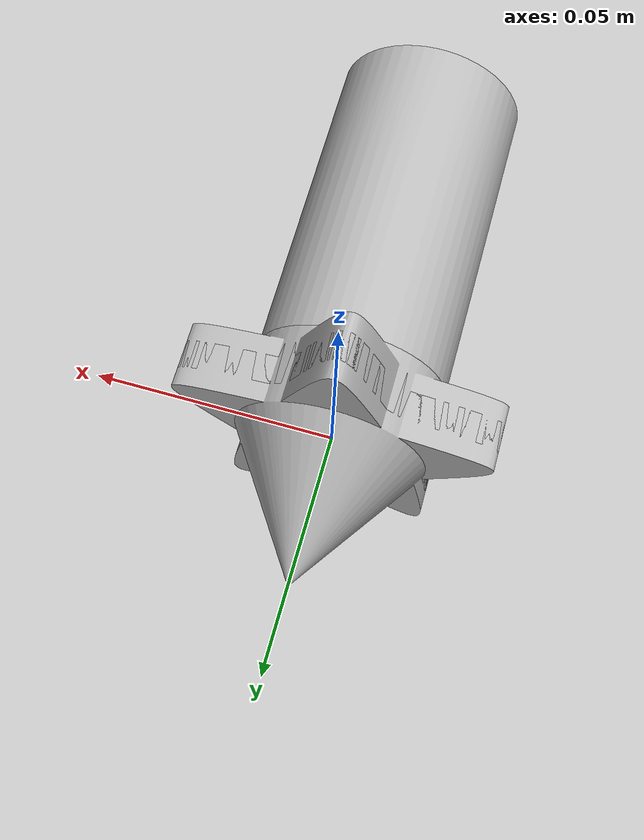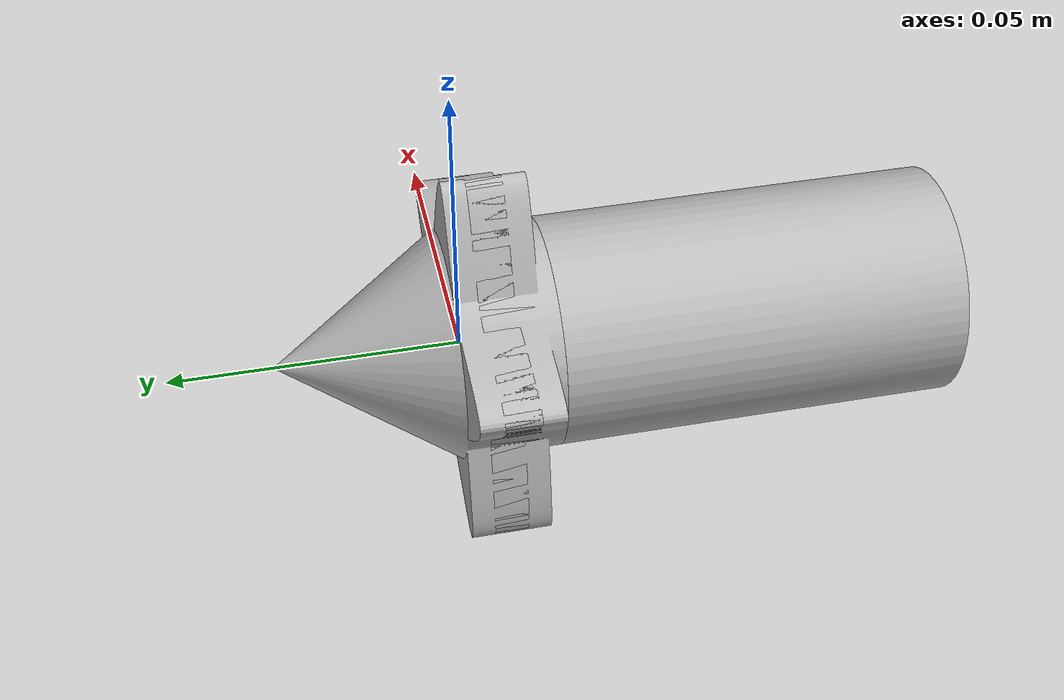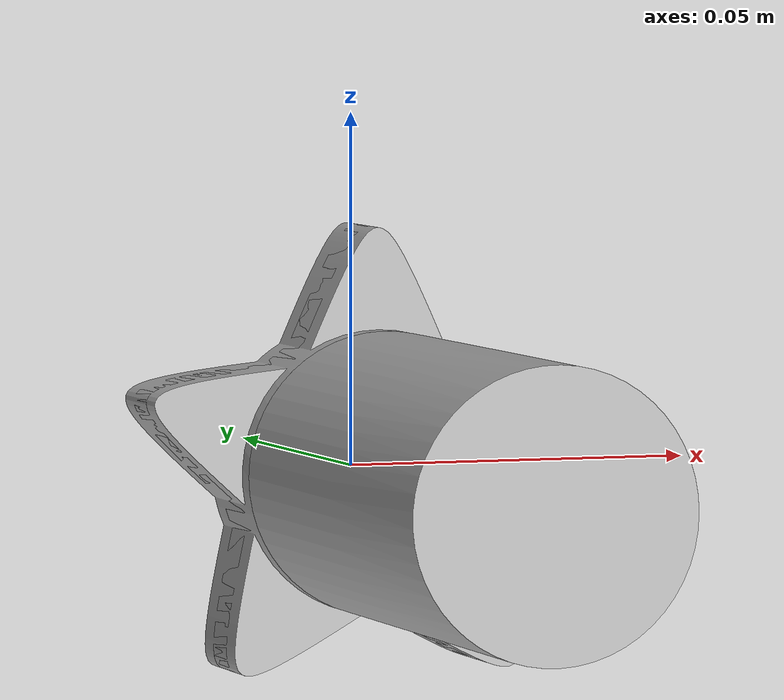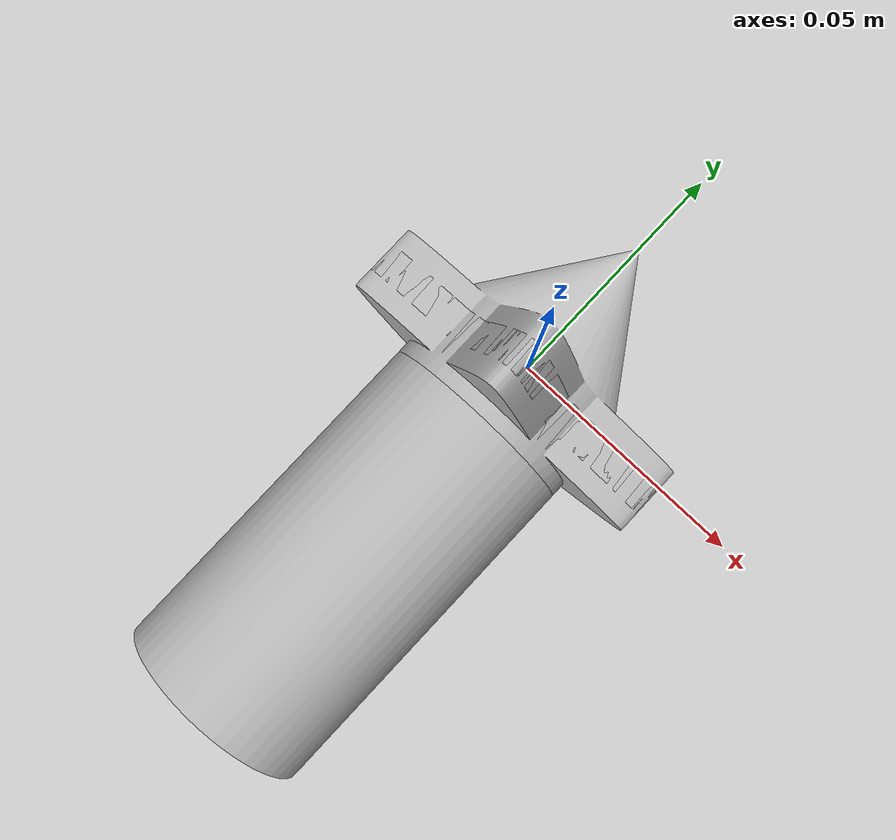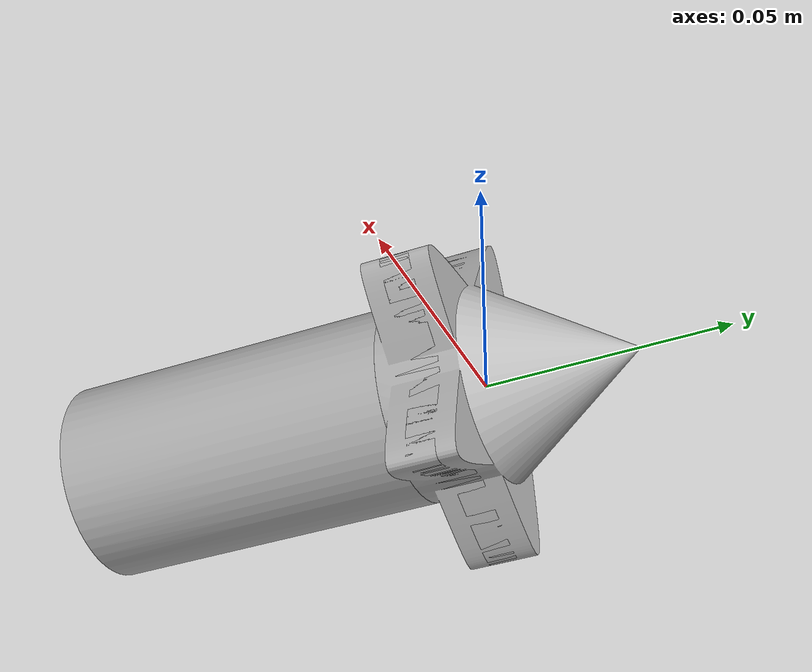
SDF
<?xml version="1.0"?>
<sdf version="1.11">
  <model name="thruster_v5">
    <link name="base_link">
      <pose relative_to="__model__">0 -0.002 0 0 0 0</pose>
      <inertial>
        <mass>0.5</mass>
      </inertial>
      <collision
        name="shroud_1__body1_collision">
        <pose relative_to="__model__">0.0 -0.025 0.0 -0.0 -1.5707963267948966 0</pose>
        <geometry>
          <box>
            <size>0.1 0.05 0.1</size>
          </box>
        </geometry>
      </collision>
      <visual name="motor_1__body2_visual">
        <geometry>
          <mesh>
            <scale>0.01 0.01 0.01</scale>
            <uri>meshes/motor_1/body2_visual.obj</uri>
          </mesh>
        </geometry>
      </visual>
      <visual name="shroud_1__body1_visual">
        <geometry>
          <mesh>
            <scale>0.01 0.01 0.01</scale>
            <uri>meshes/shroud_1/body1_visual.obj</uri>
          </mesh>
        </geometry>
      </visual>
    </link>
    <link name="propeller_1">
      <pose>0 0.002 0 0 0 0</pose>
      <inertial>
        <mass>0.0001</mass>
      </inertial>
      <visual name="propeller_1__body1_visual">
        <geometry>
          <mesh>
            <scale>0.01 0.01 0.01</scale>
            <uri>meshes/propeller_1/body1_visual.obj</uri>
          </mesh>
        </geometry>
      </visual>
      <collision name="propeller_1__body1_collision">
        <pose relative_to="__model__">0 -0.007 0 0 0 0</pose>
        <geometry>
          <box>
            <size>0.05 0.007 0.05</size>
          </box>
        </geometry>
      </collision>
    </link>
    <joint name="prop_joint" type="revolute">
      <pose relative_to="__model__">0 -0.015 0 0 0 0</pose>
      <parent>base_link</parent>
      <child>propeller_1</child>
      <axis>
        <xyz expressed_in="__model__">0 1 0</xyz>
        <limit>
          <lower>-1e+12</lower>
          <upper>1e+12</upper>
          <effort>-1</effort>
          <velocity>-1</velocity>
        </limit>
      </axis>
    </joint>
  </model>
</sdf>
